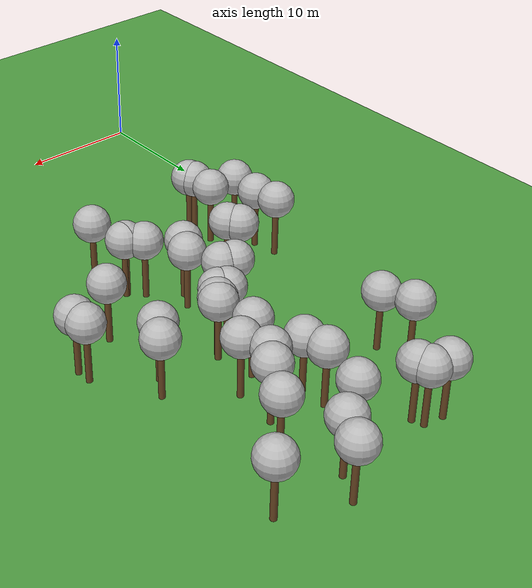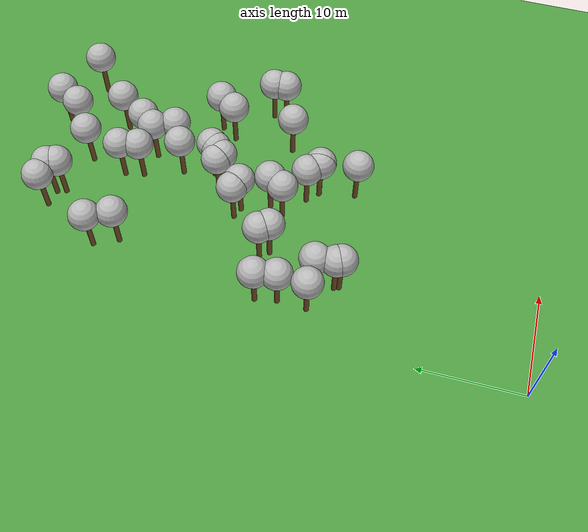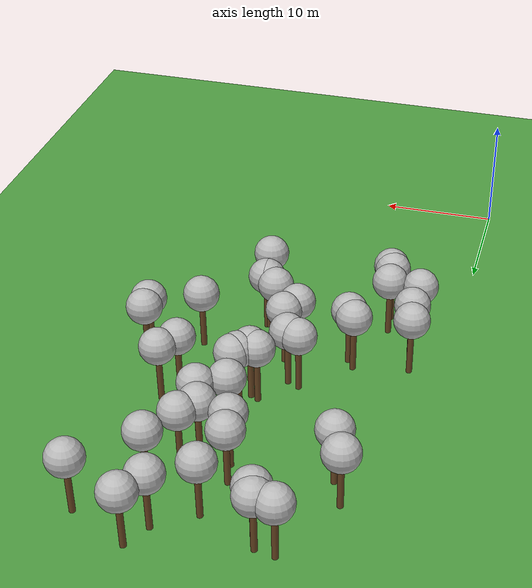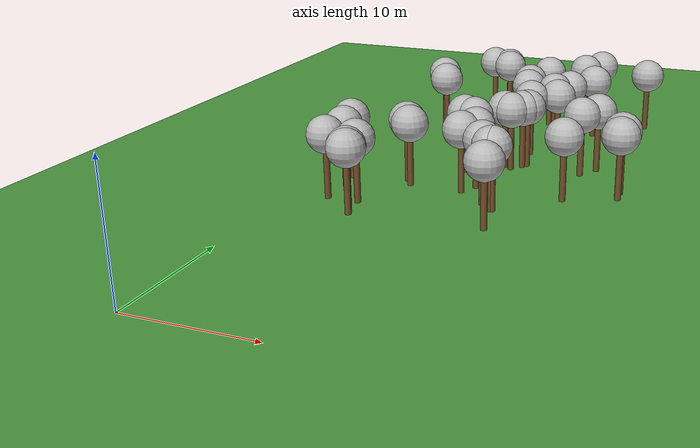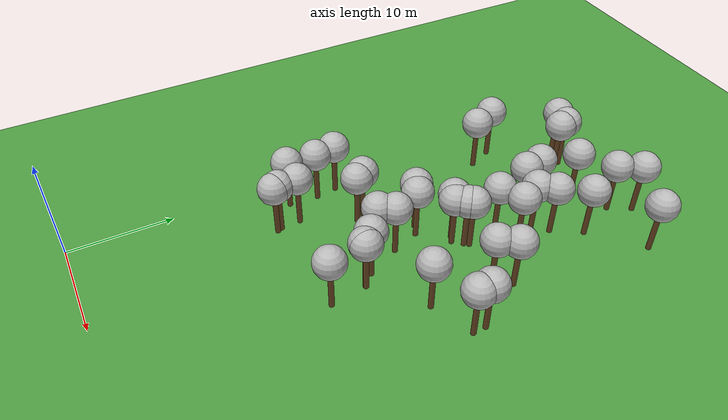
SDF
<sdf version="1.5">
 <world name="default">
  <model name="tree_simple497">
   <static>1</static>
   <link name="link">
    <pose>0 0 0.1 0 -0 0</pose>
    <collision name="collision_trunk">
     <pose>0 0 2 0 -0 0</pose>
     <geometry><cylinder><radius>0.25</radius><length>4</length></cylinder></geometry>
    </collision>
    <collision name="collision_treetop">
     <pose>0 0 5.2 0 -0 0</pose>
     <geometry><sphere><radius>1.5</radius></sphere></geometry>
    </collision>
    <visual name="trunk">
     <pose>0 0 2 0 -0 0</pose>
     <geometry><cylinder><radius>0.25</radius><length>4</length></cylinder></geometry>
     <material>
      <script>
       <uri>model://tree_simple/scripts</uri>
       <uri>model://tree_simple/materials/textures</uri>
       <name>TreeSimple/Trunk</name>
      </script>
     </material>
    </visual>
    <visual name="treetop">
     <pose>0 0 5.2 0 -0 0</pose>
     <geometry><sphere><radius>1.5</radius></sphere></geometry>
     <material>
      <script>
       <uri>model://tree_simple/scripts</uri>
       <uri>model://tree_simple/materials/textures</uri>
       <name>TreeSimple/Treetop</name>
      </script>
     </material>
    </visual>
   </link>
   <pose>16.5730666381 19.0016793819 0 0 -0 0</pose>
  </model>
  <model name="tree_simple465">
   <static>1</static>
   <link name="link">
    <pose>0 0 0.1 0 -0 0</pose>
    <collision name="collision_trunk">
     <pose>0 0 2 0 -0 0</pose>
     <geometry><cylinder><radius>0.25</radius><length>4</length></cylinder></geometry>
    </collision>
    <collision name="collision_treetop">
     <pose>0 0 5.2 0 -0 0</pose>
     <geometry><sphere><radius>1.5</radius></sphere></geometry>
    </collision>
    <visual name="trunk">
     <pose>0 0 2 0 -0 0</pose>
     <geometry><cylinder><radius>0.25</radius><length>4</length></cylinder></geometry>
     <material>
      <script>
       <uri>model://tree_simple/scripts</uri>
       <uri>model://tree_simple/materials/textures</uri>
       <name>TreeSimple/Trunk</name>
      </script>
     </material>
    </visual>
    <visual name="treetop">
     <pose>0 0 5.2 0 -0 0</pose>
     <geometry><sphere><radius>1.5</radius></sphere></geometry>
     <material>
      <script>
       <uri>model://tree_simple/scripts</uri>
       <uri>model://tree_simple/materials/textures</uri>
       <name>TreeSimple/Treetop</name>
      </script>
     </material>
    </visual>
   </link>
   <pose>5.78708546562 20.6382949275 0 0 -0 0</pose>
  </model>
  <model name="tree_simple459">
   <static>1</static>
   <link name="link">
    <pose>0 0 0.1 0 -0 0</pose>
    <collision name="collision_trunk">
     <pose>0 0 2 0 -0 0</pose>
     <geometry><cylinder><radius>0.25</radius><length>4</length></cylinder></geometry>
    </collision>
    <collision name="collision_treetop">
     <pose>0 0 5.2 0 -0 0</pose>
     <geometry><sphere><radius>1.5</radius></sphere></geometry>
    </collision>
    <visual name="trunk">
     <pose>0 0 2 0 -0 0</pose>
     <geometry><cylinder><radius>0.25</radius><length>4</length></cylinder></geometry>
     <material>
      <script>
       <uri>model://tree_simple/scripts</uri>
       <uri>model://tree_simple/materials/textures</uri>
       <name>TreeSimple/Trunk</name>
      </script>
     </material>
    </visual>
    <visual name="treetop">
     <pose>0 0 5.2 0 -0 0</pose>
     <geometry><sphere><radius>1.5</radius></sphere></geometry>
     <material>
      <script>
       <uri>model://tree_simple/scripts</uri>
       <uri>model://tree_simple/materials/textures</uri>
       <name>TreeSimple/Treetop</name>
      </script>
     </material>
    </visual>
   </link>
   <pose>23.3051385383 47.6025012909 0 0 -0 0</pose>
  </model>
  <model name="tree_simple457">
   <static>1</static>
   <link name="link">
    <pose>0 0 0.1 0 -0 0</pose>
    <collision name="collision_trunk">
     <pose>0 0 2 0 -0 0</pose>
     <geometry><cylinder><radius>0.25</radius><length>4</length></cylinder></geometry>
    </collision>
    <collision name="collision_treetop">
     <pose>0 0 5.2 0 -0 0</pose>
     <geometry><sphere><radius>1.5</radius></sphere></geometry>
    </collision>
    <visual name="trunk">
     <pose>0 0 2 0 -0 0</pose>
     <geometry><cylinder><radius>0.25</radius><length>4</length></cylinder></geometry>
     <material>
      <script>
       <uri>model://tree_simple/scripts</uri>
       <uri>model://tree_simple/materials/textures</uri>
       <name>TreeSimple/Trunk</name>
      </script>
     </material>
    </visual>
    <visual name="treetop">
     <pose>0 0 5.2 0 -0 0</pose>
     <geometry><sphere><radius>1.5</radius></sphere></geometry>
     <material>
      <script>
       <uri>model://tree_simple/scripts</uri>
       <uri>model://tree_simple/materials/textures</uri>
       <name>TreeSimple/Treetop</name>
      </script>
     </material>
    </visual>
   </link>
   <pose>13.2865883098 26.7984826025 0 0 -0 0</pose>
  </model>
  <model name="tree_simple452">
   <static>1</static>
   <link name="link">
    <pose>0 0 0.1 0 -0 0</pose>
    <collision name="collision_trunk">
     <pose>0 0 2 0 -0 0</pose>
     <geometry><cylinder><radius>0.25</radius><length>4</length></cylinder></geometry>
    </collision>
    <collision name="collision_treetop">
     <pose>0 0 5.2 0 -0 0</pose>
     <geometry><sphere><radius>1.5</radius></sphere></geometry>
    </collision>
    <visual name="trunk">
     <pose>0 0 2 0 -0 0</pose>
     <geometry><cylinder><radius>0.25</radius><length>4</length></cylinder></geometry>
     <material>
      <script>
       <uri>model://tree_simple/scripts</uri>
       <uri>model://tree_simple/materials/textures</uri>
       <name>TreeSimple/Trunk</name>
      </script>
     </material>
    </visual>
    <visual name="treetop">
     <pose>0 0 5.2 0 -0 0</pose>
     <geometry><sphere><radius>1.5</radius></sphere></geometry>
     <material>
      <script>
       <uri>model://tree_simple/scripts</uri>
       <uri>model://tree_simple/materials/textures</uri>
       <name>TreeSimple/Treetop</name>
      </script>
     </material>
    </visual>
   </link>
   <pose>21.4881506157 34.0286005496 0 0 -0 0</pose>
  </model>
  <model name="tree_simple450">
   <static>1</static>
   <link name="link">
    <pose>0 0 0.1 0 -0 0</pose>
    <collision name="collision_trunk">
     <pose>0 0 2 0 -0 0</pose>
     <geometry><cylinder><radius>0.25</radius><length>4</length></cylinder></geometry>
    </collision>
    <collision name="collision_treetop">
     <pose>0 0 5.2 0 -0 0</pose>
     <geometry><sphere><radius>1.5</radius></sphere></geometry>
    </collision>
    <visual name="trunk">
     <pose>0 0 2 0 -0 0</pose>
     <geometry><cylinder><radius>0.25</radius><length>4</length></cylinder></geometry>
     <material>
      <script>
       <uri>model://tree_simple/scripts</uri>
       <uri>model://tree_simple/materials/textures</uri>
       <name>TreeSimple/Trunk</name>
      </script>
     </material>
    </visual>
    <visual name="treetop">
     <pose>0 0 5.2 0 -0 0</pose>
     <geometry><sphere><radius>1.5</radius></sphere></geometry>
     <material>
      <script>
       <uri>model://tree_simple/scripts</uri>
       <uri>model://tree_simple/materials/textures</uri>
       <name>TreeSimple/Treetop</name>
      </script>
     </material>
    </visual>
   </link>
   <pose>16.0273432372 22.5148519884 0 0 -0 0</pose>
  </model>
  <model name="tree_simple445">
   <static>1</static>
   <link name="link">
    <pose>0 0 0.1 0 -0 0</pose>
    <collision name="collision_trunk">
     <pose>0 0 2 0 -0 0</pose>
     <geometry><cylinder><radius>0.25</radius><length>4</length></cylinder></geometry>
    </collision>
    <collision name="collision_treetop">
     <pose>0 0 5.2 0 -0 0</pose>
     <geometry><sphere><radius>1.5</radius></sphere></geometry>
    </collision>
    <visual name="trunk">
     <pose>0 0 2 0 -0 0</pose>
     <geometry><cylinder><radius>0.25</radius><length>4</length></cylinder></geometry>
     <material>
      <script>
       <uri>model://tree_simple/scripts</uri>
       <uri>model://tree_simple/materials/textures</uri>
       <name>TreeSimple/Trunk</name>
      </script>
     </material>
    </visual>
    <visual name="treetop">
     <pose>0 0 5.2 0 -0 0</pose>
     <geometry><sphere><radius>1.5</radius></sphere></geometry>
     <material>
      <script>
       <uri>model://tree_simple/scripts</uri>
       <uri>model://tree_simple/materials/textures</uri>
       <name>TreeSimple/Treetop</name>
      </script>
     </material>
    </visual>
   </link>
   <pose>17.3330924595 47.7477611906 0 0 -0 0</pose>
  </model>
  <model name="tree_simple443">
   <static>1</static>
   <link name="link">
    <pose>0 0 0.1 0 -0 0</pose>
    <collision name="collision_trunk">
     <pose>0 0 2 0 -0 0</pose>
     <geometry><cylinder><radius>0.25</radius><length>4</length></cylinder></geometry>
    </collision>
    <collision name="collision_treetop">
     <pose>0 0 5.2 0 -0 0</pose>
     <geometry><sphere><radius>1.5</radius></sphere></geometry>
    </collision>
    <visual name="trunk">
     <pose>0 0 2 0 -0 0</pose>
     <geometry><cylinder><radius>0.25</radius><length>4</length></cylinder></geometry>
     <material>
      <script>
       <uri>model://tree_simple/scripts</uri>
       <uri>model://tree_simple/materials/textures</uri>
       <name>TreeSimple/Trunk</name>
      </script>
     </material>
    </visual>
    <visual name="treetop">
     <pose>0 0 5.2 0 -0 0</pose>
     <geometry><sphere><radius>1.5</radius></sphere></geometry>
     <material>
      <script>
       <uri>model://tree_simple/scripts</uri>
       <uri>model://tree_simple/materials/textures</uri>
       <name>TreeSimple/Treetop</name>
      </script>
     </material>
    </visual>
   </link>
   <pose>20.4518447393 32.4372971603 0 0 -0 0</pose>
  </model>
  <model name="tree_simple419">
   <static>1</static>
   <link name="link">
    <pose>0 0 0.1 0 -0 0</pose>
    <collision name="collision_trunk">
     <pose>0 0 2 0 -0 0</pose>
     <geometry><cylinder><radius>0.25</radius><length>4</length></cylinder></geometry>
    </collision>
    <collision name="collision_treetop">
     <pose>0 0 5.2 0 -0 0</pose>
     <geometry><sphere><radius>1.5</radius></sphere></geometry>
    </collision>
    <visual name="trunk">
     <pose>0 0 2 0 -0 0</pose>
     <geometry><cylinder><radius>0.25</radius><length>4</length></cylinder></geometry>
     <material>
      <script>
       <uri>model://tree_simple/scripts</uri>
       <uri>model://tree_simple/materials/textures</uri>
       <name>TreeSimple/Trunk</name>
      </script>
     </material>
    </visual>
    <visual name="treetop">
     <pose>0 0 5.2 0 -0 0</pose>
     <geometry><sphere><radius>1.5</radius></sphere></geometry>
     <material>
      <script>
       <uri>model://tree_simple/scripts</uri>
       <uri>model://tree_simple/materials/textures</uri>
       <name>TreeSimple/Treetop</name>
      </script>
     </material>
    </visual>
   </link>
   <pose>15.0608261067 36.3391301174 0 0 -0 0</pose>
  </model>
  <model name="tree_simple413">
   <static>1</static>
   <link name="link">
    <pose>0 0 0.1 0 -0 0</pose>
    <collision name="collision_trunk">
     <pose>0 0 2 0 -0 0</pose>
     <geometry><cylinder><radius>0.25</radius><length>4</length></cylinder></geometry>
    </collision>
    <collision name="collision_treetop">
     <pose>0 0 5.2 0 -0 0</pose>
     <geometry><sphere><radius>1.5</radius></sphere></geometry>
    </collision>
    <visual name="trunk">
     <pose>0 0 2 0 -0 0</pose>
     <geometry><cylinder><radius>0.25</radius><length>4</length></cylinder></geometry>
     <material>
      <script>
       <uri>model://tree_simple/scripts</uri>
       <uri>model://tree_simple/materials/textures</uri>
       <name>TreeSimple/Trunk</name>
      </script>
     </material>
    </visual>
    <visual name="treetop">
     <pose>0 0 5.2 0 -0 0</pose>
     <geometry><sphere><radius>1.5</radius></sphere></geometry>
     <material>
      <script>
       <uri>model://tree_simple/scripts</uri>
       <uri>model://tree_simple/materials/textures</uri>
       <name>TreeSimple/Treetop</name>
      </script>
     </material>
    </visual>
   </link>
   <pose>4.79772995732 42.1907919742 0 0 -0 0</pose>
  </model>
  <model name="tree_simple405">
   <static>1</static>
   <link name="link">
    <pose>0 0 0.1 0 -0 0</pose>
    <collision name="collision_trunk">
     <pose>0 0 2 0 -0 0</pose>
     <geometry><cylinder><radius>0.25</radius><length>4</length></cylinder></geometry>
    </collision>
    <collision name="collision_treetop">
     <pose>0 0 5.2 0 -0 0</pose>
     <geometry><sphere><radius>1.5</radius></sphere></geometry>
    </collision>
    <visual name="trunk">
     <pose>0 0 2 0 -0 0</pose>
     <geometry><cylinder><radius>0.25</radius><length>4</length></cylinder></geometry>
     <material>
      <script>
       <uri>model://tree_simple/scripts</uri>
       <uri>model://tree_simple/materials/textures</uri>
       <name>TreeSimple/Trunk</name>
      </script>
     </material>
    </visual>
    <visual name="treetop">
     <pose>0 0 5.2 0 -0 0</pose>
     <geometry><sphere><radius>1.5</radius></sphere></geometry>
     <material>
      <script>
       <uri>model://tree_simple/scripts</uri>
       <uri>model://tree_simple/materials/textures</uri>
       <name>TreeSimple/Treetop</name>
      </script>
     </material>
    </visual>
   </link>
   <pose>13.9640568795 32.2793272532 0 0 -0 0</pose>
  </model>
  <model name="tree_simple401">
   <static>1</static>
   <link name="link">
    <pose>0 0 0.1 0 -0 0</pose>
    <collision name="collision_trunk">
     <pose>0 0 2 0 -0 0</pose>
     <geometry><cylinder><radius>0.25</radius><length>4</length></cylinder></geometry>
    </collision>
    <collision name="collision_treetop">
     <pose>0 0 5.2 0 -0 0</pose>
     <geometry><sphere><radius>1.5</radius></sphere></geometry>
    </collision>
    <visual name="trunk">
     <pose>0 0 2 0 -0 0</pose>
     <geometry><cylinder><radius>0.25</radius><length>4</length></cylinder></geometry>
     <material>
      <script>
       <uri>model://tree_simple/scripts</uri>
       <uri>model://tree_simple/materials/textures</uri>
       <name>TreeSimple/Trunk</name>
      </script>
     </material>
    </visual>
    <visual name="treetop">
     <pose>0 0 5.2 0 -0 0</pose>
     <geometry><sphere><radius>1.5</radius></sphere></geometry>
     <material>
      <script>
       <uri>model://tree_simple/scripts</uri>
       <uri>model://tree_simple/materials/textures</uri>
       <name>TreeSimple/Treetop</name>
      </script>
     </material>
    </visual>
   </link>
   <pose>18.5119614972 49.8300347258 0 0 -0 0</pose>
  </model>
  <model name="tree_simple381">
   <static>1</static>
   <link name="link">
    <pose>0 0 0.1 0 -0 0</pose>
    <collision name="collision_trunk">
     <pose>0 0 2 0 -0 0</pose>
     <geometry><cylinder><radius>0.25</radius><length>4</length></cylinder></geometry>
    </collision>
    <collision name="collision_treetop">
     <pose>0 0 5.2 0 -0 0</pose>
     <geometry><sphere><radius>1.5</radius></sphere></geometry>
    </collision>
    <visual name="trunk">
     <pose>0 0 2 0 -0 0</pose>
     <geometry><cylinder><radius>0.25</radius><length>4</length></cylinder></geometry>
     <material>
      <script>
       <uri>model://tree_simple/scripts</uri>
       <uri>model://tree_simple/materials/textures</uri>
       <name>TreeSimple/Trunk</name>
      </script>
     </material>
    </visual>
    <visual name="treetop">
     <pose>0 0 5.2 0 -0 0</pose>
     <geometry><sphere><radius>1.5</radius></sphere></geometry>
     <material>
      <script>
       <uri>model://tree_simple/scripts</uri>
       <uri>model://tree_simple/materials/textures</uri>
       <name>TreeSimple/Treetop</name>
      </script>
     </material>
    </visual>
   </link>
   <pose>14.598493672 31.9609585056 0 0 -0 0</pose>
  </model>
  <model name="tree_simple372">
   <static>1</static>
   <link name="link">
    <pose>0 0 0.1 0 -0 0</pose>
    <collision name="collision_trunk">
     <pose>0 0 2 0 -0 0</pose>
     <geometry><cylinder><radius>0.25</radius><length>4</length></cylinder></geometry>
    </collision>
    <collision name="collision_treetop">
     <pose>0 0 5.2 0 -0 0</pose>
     <geometry><sphere><radius>1.5</radius></sphere></geometry>
    </collision>
    <visual name="trunk">
     <pose>0 0 2 0 -0 0</pose>
     <geometry><cylinder><radius>0.25</radius><length>4</length></cylinder></geometry>
     <material>
      <script>
       <uri>model://tree_simple/scripts</uri>
       <uri>model://tree_simple/materials/textures</uri>
       <name>TreeSimple/Trunk</name>
      </script>
     </material>
    </visual>
    <visual name="treetop">
     <pose>0 0 5.2 0 -0 0</pose>
     <geometry><sphere><radius>1.5</radius></sphere></geometry>
     <material>
      <script>
       <uri>model://tree_simple/scripts</uri>
       <uri>model://tree_simple/materials/textures</uri>
       <name>TreeSimple/Treetop</name>
      </script>
     </material>
    </visual>
   </link>
   <pose>19.0807104519 43.6051965294 0 0 -0 0</pose>
  </model>
  <model name="tree_simple367">
   <static>1</static>
   <link name="link">
    <pose>0 0 0.1 0 -0 0</pose>
    <collision name="collision_trunk">
     <pose>0 0 2 0 -0 0</pose>
     <geometry><cylinder><radius>0.25</radius><length>4</length></cylinder></geometry>
    </collision>
    <collision name="collision_treetop">
     <pose>0 0 5.2 0 -0 0</pose>
     <geometry><sphere><radius>1.5</radius></sphere></geometry>
    </collision>
    <visual name="trunk">
     <pose>0 0 2 0 -0 0</pose>
     <geometry><cylinder><radius>0.25</radius><length>4</length></cylinder></geometry>
     <material>
      <script>
       <uri>model://tree_simple/scripts</uri>
       <uri>model://tree_simple/materials/textures</uri>
       <name>TreeSimple/Trunk</name>
      </script>
     </material>
    </visual>
    <visual name="treetop">
     <pose>0 0 5.2 0 -0 0</pose>
     <geometry><sphere><radius>1.5</radius></sphere></geometry>
     <material>
      <script>
       <uri>model://tree_simple/scripts</uri>
       <uri>model://tree_simple/materials/textures</uri>
       <name>TreeSimple/Treetop</name>
      </script>
     </material>
    </visual>
   </link>
   <pose>14.2659299001 45.7179827091 0 0 -0 0</pose>
  </model>
  <model name="tree_simple365">
   <static>1</static>
   <link name="link">
    <pose>0 0 0.1 0 -0 0</pose>
    <collision name="collision_trunk">
     <pose>0 0 2 0 -0 0</pose>
     <geometry><cylinder><radius>0.25</radius><length>4</length></cylinder></geometry>
    </collision>
    <collision name="collision_treetop">
     <pose>0 0 5.2 0 -0 0</pose>
     <geometry><sphere><radius>1.5</radius></sphere></geometry>
    </collision>
    <visual name="trunk">
     <pose>0 0 2 0 -0 0</pose>
     <geometry><cylinder><radius>0.25</radius><length>4</length></cylinder></geometry>
     <material>
      <script>
       <uri>model://tree_simple/scripts</uri>
       <uri>model://tree_simple/materials/textures</uri>
       <name>TreeSimple/Trunk</name>
      </script>
     </material>
    </visual>
    <visual name="treetop">
     <pose>0 0 5.2 0 -0 0</pose>
     <geometry><sphere><radius>1.5</radius></sphere></geometry>
     <material>
      <script>
       <uri>model://tree_simple/scripts</uri>
       <uri>model://tree_simple/materials/textures</uri>
       <name>TreeSimple/Treetop</name>
      </script>
     </material>
    </visual>
   </link>
   <pose>7.96669325113 48.1339153876 0 0 -0 0</pose>
  </model>
  <model name="tree_simple340">
   <static>1</static>
   <link name="link">
    <pose>0 0 0.1 0 -0 0</pose>
    <collision name="collision_trunk">
     <pose>0 0 2 0 -0 0</pose>
     <geometry><cylinder><radius>0.25</radius><length>4</length></cylinder></geometry>
    </collision>
    <collision name="collision_treetop">
     <pose>0 0 5.2 0 -0 0</pose>
     <geometry><sphere><radius>1.5</radius></sphere></geometry>
    </collision>
    <visual name="trunk">
     <pose>0 0 2 0 -0 0</pose>
     <geometry><cylinder><radius>0.25</radius><length>4</length></cylinder></geometry>
     <material>
      <script>
       <uri>model://tree_simple/scripts</uri>
       <uri>model://tree_simple/materials/textures</uri>
       <name>TreeSimple/Trunk</name>
      </script>
     </material>
    </visual>
    <visual name="treetop">
     <pose>0 0 5.2 0 -0 0</pose>
     <geometry><sphere><radius>1.5</radius></sphere></geometry>
     <material>
      <script>
       <uri>model://tree_simple/scripts</uri>
       <uri>model://tree_simple/materials/textures</uri>
       <name>TreeSimple/Treetop</name>
      </script>
     </material>
    </visual>
   </link>
   <pose>15.6359324045 33.2415832038 0 0 -0 0</pose>
  </model>
  <model name="tree_simple339">
   <static>1</static>
   <link name="link">
    <pose>0 0 0.1 0 -0 0</pose>
    <collision name="collision_trunk">
     <pose>0 0 2 0 -0 0</pose>
     <geometry><cylinder><radius>0.25</radius><length>4</length></cylinder></geometry>
    </collision>
    <collision name="collision_treetop">
     <pose>0 0 5.2 0 -0 0</pose>
     <geometry><sphere><radius>1.5</radius></sphere></geometry>
    </collision>
    <visual name="trunk">
     <pose>0 0 2 0 -0 0</pose>
     <geometry><cylinder><radius>0.25</radius><length>4</length></cylinder></geometry>
     <material>
      <script>
       <uri>model://tree_simple/scripts</uri>
       <uri>model://tree_simple/materials/textures</uri>
       <name>TreeSimple/Trunk</name>
      </script>
     </material>
    </visual>
    <visual name="treetop">
     <pose>0 0 5.2 0 -0 0</pose>
     <geometry><sphere><radius>1.5</radius></sphere></geometry>
     <material>
      <script>
       <uri>model://tree_simple/scripts</uri>
       <uri>model://tree_simple/materials/textures</uri>
       <name>TreeSimple/Treetop</name>
      </script>
     </material>
    </visual>
   </link>
   <pose>8.14193712957 25.5166560065 0 0 -0 0</pose>
  </model>
  <model name="tree_simple328">
   <static>1</static>
   <link name="link">
    <pose>0 0 0.1 0 -0 0</pose>
    <collision name="collision_trunk">
     <pose>0 0 2 0 -0 0</pose>
     <geometry><cylinder><radius>0.25</radius><length>4</length></cylinder></geometry>
    </collision>
    <collision name="collision_treetop">
     <pose>0 0 5.2 0 -0 0</pose>
     <geometry><sphere><radius>1.5</radius></sphere></geometry>
    </collision>
    <visual name="trunk">
     <pose>0 0 2 0 -0 0</pose>
     <geometry><cylinder><radius>0.25</radius><length>4</length></cylinder></geometry>
     <material>
      <script>
       <uri>model://tree_simple/scripts</uri>
       <uri>model://tree_simple/materials/textures</uri>
       <name>TreeSimple/Trunk</name>
      </script>
     </material>
    </visual>
    <visual name="treetop">
     <pose>0 0 5.2 0 -0 0</pose>
     <geometry><sphere><radius>1.5</radius></sphere></geometry>
     <material>
      <script>
       <uri>model://tree_simple/scripts</uri>
       <uri>model://tree_simple/materials/textures</uri>
       <name>TreeSimple/Treetop</name>
      </script>
     </material>
    </visual>
   </link>
   <pose>3.34573808519 23.5188113382 0 0 -0 0</pose>
  </model>
  <model name="tree_simple325">
   <static>1</static>
   <link name="link">
    <pose>0 0 0.1 0 -0 0</pose>
    <collision name="collision_trunk">
     <pose>0 0 2 0 -0 0</pose>
     <geometry><cylinder><radius>0.25</radius><length>4</length></cylinder></geometry>
    </collision>
    <collision name="collision_treetop">
     <pose>0 0 5.2 0 -0 0</pose>
     <geometry><sphere><radius>1.5</radius></sphere></geometry>
    </collision>
    <visual name="trunk">
     <pose>0 0 2 0 -0 0</pose>
     <geometry><cylinder><radius>0.25</radius><length>4</length></cylinder></geometry>
     <material>
      <script>
       <uri>model://tree_simple/scripts</uri>
       <uri>model://tree_simple/materials/textures</uri>
       <name>TreeSimple/Trunk</name>
      </script>
     </material>
    </visual>
    <visual name="treetop">
     <pose>0 0 5.2 0 -0 0</pose>
     <geometry><sphere><radius>1.5</radius></sphere></geometry>
     <material>
      <script>
       <uri>model://tree_simple/scripts</uri>
       <uri>model://tree_simple/materials/textures</uri>
       <name>TreeSimple/Treetop</name>
      </script>
     </material>
    </visual>
   </link>
   <pose>16.3512762839 39.5353955834 0 0 -0 0</pose>
  </model>
  <model name="tree_simple320">
   <static>1</static>
   <link name="link">
    <pose>0 0 0.1 0 -0 0</pose>
    <collision name="collision_trunk">
     <pose>0 0 2 0 -0 0</pose>
     <geometry><cylinder><radius>0.25</radius><length>4</length></cylinder></geometry>
    </collision>
    <collision name="collision_treetop">
     <pose>0 0 5.2 0 -0 0</pose>
     <geometry><sphere><radius>1.5</radius></sphere></geometry>
    </collision>
    <visual name="trunk">
     <pose>0 0 2 0 -0 0</pose>
     <geometry><cylinder><radius>0.25</radius><length>4</length></cylinder></geometry>
     <material>
      <script>
       <uri>model://tree_simple/scripts</uri>
       <uri>model://tree_simple/materials/textures</uri>
       <name>TreeSimple/Trunk</name>
      </script>
     </material>
    </visual>
    <visual name="treetop">
     <pose>0 0 5.2 0 -0 0</pose>
     <geometry><sphere><radius>1.5</radius></sphere></geometry>
     <material>
      <script>
       <uri>model://tree_simple/scripts</uri>
       <uri>model://tree_simple/materials/textures</uri>
       <name>TreeSimple/Treetop</name>
      </script>
     </material>
    </visual>
   </link>
   <pose>17.4267796311 40.9028236297 0 0 -0 0</pose>
  </model>
  <model name="tree_simple295">
   <static>1</static>
   <link name="link">
    <pose>0 0 0.1 0 -0 0</pose>
    <collision name="collision_trunk">
     <pose>0 0 2 0 -0 0</pose>
     <geometry><cylinder><radius>0.25</radius><length>4</length></cylinder></geometry>
    </collision>
    <collision name="collision_treetop">
     <pose>0 0 5.2 0 -0 0</pose>
     <geometry><sphere><radius>1.5</radius></sphere></geometry>
    </collision>
    <visual name="trunk">
     <pose>0 0 2 0 -0 0</pose>
     <geometry><cylinder><radius>0.25</radius><length>4</length></cylinder></geometry>
     <material>
      <script>
       <uri>model://tree_simple/scripts</uri>
       <uri>model://tree_simple/materials/textures</uri>
       <name>TreeSimple/Trunk</name>
      </script>
     </material>
    </visual>
    <visual name="treetop">
     <pose>0 0 5.2 0 -0 0</pose>
     <geometry><sphere><radius>1.5</radius></sphere></geometry>
     <material>
      <script>
       <uri>model://tree_simple/scripts</uri>
       <uri>model://tree_simple/materials/textures</uri>
       <name>TreeSimple/Treetop</name>
      </script>
     </material>
    </visual>
   </link>
   <pose>24.4545500201 28.0657933919 0 0 -0 0</pose>
  </model>
  <model name="tree_simple287">
   <static>1</static>
   <link name="link">
    <pose>0 0 0.1 0 -0 0</pose>
    <collision name="collision_trunk">
     <pose>0 0 2 0 -0 0</pose>
     <geometry><cylinder><radius>0.25</radius><length>4</length></cylinder></geometry>
    </collision>
    <collision name="collision_treetop">
     <pose>0 0 5.2 0 -0 0</pose>
     <geometry><sphere><radius>1.5</radius></sphere></geometry>
    </collision>
    <visual name="trunk">
     <pose>0 0 2 0 -0 0</pose>
     <geometry><cylinder><radius>0.25</radius><length>4</length></cylinder></geometry>
     <material>
      <script>
       <uri>model://tree_simple/scripts</uri>
       <uri>model://tree_simple/materials/textures</uri>
       <name>TreeSimple/Trunk</name>
      </script>
     </material>
    </visual>
    <visual name="treetop">
     <pose>0 0 5.2 0 -0 0</pose>
     <geometry><sphere><radius>1.5</radius></sphere></geometry>
     <material>
      <script>
       <uri>model://tree_simple/scripts</uri>
       <uri>model://tree_simple/materials/textures</uri>
       <name>TreeSimple/Treetop</name>
      </script>
     </material>
    </visual>
   </link>
   <pose>5.81960290033 39.8953620518 0 0 -0 0</pose>
  </model>
  <model name="tree_simple275">
   <static>1</static>
   <link name="link">
    <pose>0 0 0.1 0 -0 0</pose>
    <collision name="collision_trunk">
     <pose>0 0 2 0 -0 0</pose>
     <geometry><cylinder><radius>0.25</radius><length>4</length></cylinder></geometry>
    </collision>
    <collision name="collision_treetop">
     <pose>0 0 5.2 0 -0 0</pose>
     <geometry><sphere><radius>1.5</radius></sphere></geometry>
    </collision>
    <visual name="trunk">
     <pose>0 0 2 0 -0 0</pose>
     <geometry><cylinder><radius>0.25</radius><length>4</length></cylinder></geometry>
     <material>
      <script>
       <uri>model://tree_simple/scripts</uri>
       <uri>model://tree_simple/materials/textures</uri>
       <name>TreeSimple/Trunk</name>
      </script>
     </material>
    </visual>
    <visual name="treetop">
     <pose>0 0 5.2 0 -0 0</pose>
     <geometry><sphere><radius>1.5</radius></sphere></geometry>
     <material>
      <script>
       <uri>model://tree_simple/scripts</uri>
       <uri>model://tree_simple/materials/textures</uri>
       <name>TreeSimple/Treetop</name>
      </script>
     </material>
    </visual>
   </link>
   <pose>11.2194181464 29.9629539421 0 0 -0 0</pose>
  </model>
  <model name="tree_simple260">
   <static>1</static>
   <link name="link">
    <pose>0 0 0.1 0 -0 0</pose>
    <collision name="collision_trunk">
     <pose>0 0 2 0 -0 0</pose>
     <geometry><cylinder><radius>0.25</radius><length>4</length></cylinder></geometry>
    </collision>
    <collision name="collision_treetop">
     <pose>0 0 5.2 0 -0 0</pose>
     <geometry><sphere><radius>1.5</radius></sphere></geometry>
    </collision>
    <visual name="trunk">
     <pose>0 0 2 0 -0 0</pose>
     <geometry><cylinder><radius>0.25</radius><length>4</length></cylinder></geometry>
     <material>
      <script>
       <uri>model://tree_simple/scripts</uri>
       <uri>model://tree_simple/materials/textures</uri>
       <name>TreeSimple/Trunk</name>
      </script>
     </material>
    </visual>
    <visual name="treetop">
     <pose>0 0 5.2 0 -0 0</pose>
     <geometry><sphere><radius>1.5</radius></sphere></geometry>
     <material>
      <script>
       <uri>model://tree_simple/scripts</uri>
       <uri>model://tree_simple/materials/textures</uri>
       <name>TreeSimple/Treetop</name>
      </script>
     </material>
    </visual>
   </link>
   <pose>20.4747246255 26.3739745209 0 0 -0 0</pose>
  </model>
  <model name="tree_simple258">
   <static>1</static>
   <link name="link">
    <pose>0 0 0.1 0 -0 0</pose>
    <collision name="collision_trunk">
     <pose>0 0 2 0 -0 0</pose>
     <geometry><cylinder><radius>0.25</radius><length>4</length></cylinder></geometry>
    </collision>
    <collision name="collision_treetop">
     <pose>0 0 5.2 0 -0 0</pose>
     <geometry><sphere><radius>1.5</radius></sphere></geometry>
    </collision>
    <visual name="trunk">
     <pose>0 0 2 0 -0 0</pose>
     <geometry><cylinder><radius>0.25</radius><length>4</length></cylinder></geometry>
     <material>
      <script>
       <uri>model://tree_simple/scripts</uri>
       <uri>model://tree_simple/materials/textures</uri>
       <name>TreeSimple/Trunk</name>
      </script>
     </material>
    </visual>
    <visual name="treetop">
     <pose>0 0 5.2 0 -0 0</pose>
     <geometry><sphere><radius>1.5</radius></sphere></geometry>
     <material>
      <script>
       <uri>model://tree_simple/scripts</uri>
       <uri>model://tree_simple/materials/textures</uri>
       <name>TreeSimple/Treetop</name>
      </script>
     </material>
    </visual>
   </link>
   <pose>24.3825797899 29.2966391115 0 0 -0 0</pose>
  </model>
  <model name="tree_simple254">
   <static>1</static>
   <link name="link">
    <pose>0 0 0.1 0 -0 0</pose>
    <collision name="collision_trunk">
     <pose>0 0 2 0 -0 0</pose>
     <geometry><cylinder><radius>0.25</radius><length>4</length></cylinder></geometry>
    </collision>
    <collision name="collision_treetop">
     <pose>0 0 5.2 0 -0 0</pose>
     <geometry><sphere><radius>1.5</radius></sphere></geometry>
    </collision>
    <visual name="trunk">
     <pose>0 0 2 0 -0 0</pose>
     <geometry><cylinder><radius>0.25</radius><length>4</length></cylinder></geometry>
     <material>
      <script>
       <uri>model://tree_simple/scripts</uri>
       <uri>model://tree_simple/materials/textures</uri>
       <name>TreeSimple/Trunk</name>
      </script>
     </material>
    </visual>
    <visual name="treetop">
     <pose>0 0 5.2 0 -0 0</pose>
     <geometry><sphere><radius>1.5</radius></sphere></geometry>
     <material>
      <script>
       <uri>model://tree_simple/scripts</uri>
       <uri>model://tree_simple/materials/textures</uri>
       <name>TreeSimple/Treetop</name>
      </script>
     </material>
    </visual>
   </link>
   <pose>13.3684370787 41.9999258399 0 0 -0 0</pose>
  </model>
  <model name="tree_simple229">
   <static>1</static>
   <link name="link">
    <pose>0 0 0.1 0 -0 0</pose>
    <collision name="collision_trunk">
     <pose>0 0 2 0 -0 0</pose>
     <geometry><cylinder><radius>0.25</radius><length>4</length></cylinder></geometry>
    </collision>
    <collision name="collision_treetop">
     <pose>0 0 5.2 0 -0 0</pose>
     <geometry><sphere><radius>1.5</radius></sphere></geometry>
    </collision>
    <visual name="trunk">
     <pose>0 0 2 0 -0 0</pose>
     <geometry><cylinder><radius>0.25</radius><length>4</length></cylinder></geometry>
     <material>
      <script>
       <uri>model://tree_simple/scripts</uri>
       <uri>model://tree_simple/materials/textures</uri>
       <name>TreeSimple/Trunk</name>
      </script>
     </material>
    </visual>
    <visual name="treetop">
     <pose>0 0 5.2 0 -0 0</pose>
     <geometry><sphere><radius>1.5</radius></sphere></geometry>
     <material>
      <script>
       <uri>model://tree_simple/scripts</uri>
       <uri>model://tree_simple/materials/textures</uri>
       <name>TreeSimple/Treetop</name>
      </script>
     </material>
    </visual>
   </link>
   <pose>17.1703693381 37.4765229217 0 0 -0 0</pose>
  </model>
  <model name="tree_simple196">
   <static>1</static>
   <link name="link">
    <pose>0 0 0.1 0 -0 0</pose>
    <collision name="collision_trunk">
     <pose>0 0 2 0 -0 0</pose>
     <geometry><cylinder><radius>0.25</radius><length>4</length></cylinder></geometry>
    </collision>
    <collision name="collision_treetop">
     <pose>0 0 5.2 0 -0 0</pose>
     <geometry><sphere><radius>1.5</radius></sphere></geometry>
    </collision>
    <visual name="trunk">
     <pose>0 0 2 0 -0 0</pose>
     <geometry><cylinder><radius>0.25</radius><length>4</length></cylinder></geometry>
     <material>
      <script>
       <uri>model://tree_simple/scripts</uri>
       <uri>model://tree_simple/materials/textures</uri>
       <name>TreeSimple/Trunk</name>
      </script>
     </material>
    </visual>
    <visual name="treetop">
     <pose>0 0 5.2 0 -0 0</pose>
     <geometry><sphere><radius>1.5</radius></sphere></geometry>
     <material>
      <script>
       <uri>model://tree_simple/scripts</uri>
       <uri>model://tree_simple/materials/textures</uri>
       <name>TreeSimple/Treetop</name>
      </script>
     </material>
    </visual>
   </link>
   <pose>13.7422198568 40.1413468751 0 0 -0 0</pose>
  </model>
  <model name="tree_simple189">
   <static>1</static>
   <link name="link">
    <pose>0 0 0.1 0 -0 0</pose>
    <collision name="collision_trunk">
     <pose>0 0 2 0 -0 0</pose>
     <geometry><cylinder><radius>0.25</radius><length>4</length></cylinder></geometry>
    </collision>
    <collision name="collision_treetop">
     <pose>0 0 5.2 0 -0 0</pose>
     <geometry><sphere><radius>1.5</radius></sphere></geometry>
    </collision>
    <visual name="trunk">
     <pose>0 0 2 0 -0 0</pose>
     <geometry><cylinder><radius>0.25</radius><length>4</length></cylinder></geometry>
     <material>
      <script>
       <uri>model://tree_simple/scripts</uri>
       <uri>model://tree_simple/materials/textures</uri>
       <name>TreeSimple/Trunk</name>
      </script>
     </material>
    </visual>
    <visual name="treetop">
     <pose>0 0 5.2 0 -0 0</pose>
     <geometry><sphere><radius>1.5</radius></sphere></geometry>
     <material>
      <script>
       <uri>model://tree_simple/scripts</uri>
       <uri>model://tree_simple/materials/textures</uri>
       <name>TreeSimple/Treetop</name>
      </script>
     </material>
    </visual>
   </link>
   <pose>7.56705231804 26.3742867244 0 0 -0 0</pose>
  </model>
  <model name="tree_simple181">
   <static>1</static>
   <link name="link">
    <pose>0 0 0.1 0 -0 0</pose>
    <collision name="collision_trunk">
     <pose>0 0 2 0 -0 0</pose>
     <geometry><cylinder><radius>0.25</radius><length>4</length></cylinder></geometry>
    </collision>
    <collision name="collision_treetop">
     <pose>0 0 5.2 0 -0 0</pose>
     <geometry><sphere><radius>1.5</radius></sphere></geometry>
    </collision>
    <visual name="trunk">
     <pose>0 0 2 0 -0 0</pose>
     <geometry><cylinder><radius>0.25</radius><length>4</length></cylinder></geometry>
     <material>
      <script>
       <uri>model://tree_simple/scripts</uri>
       <uri>model://tree_simple/materials/textures</uri>
       <name>TreeSimple/Trunk</name>
      </script>
     </material>
    </visual>
    <visual name="treetop">
     <pose>0 0 5.2 0 -0 0</pose>
     <geometry><sphere><radius>1.5</radius></sphere></geometry>
     <material>
      <script>
       <uri>model://tree_simple/scripts</uri>
       <uri>model://tree_simple/materials/textures</uri>
       <name>TreeSimple/Treetop</name>
      </script>
     </material>
    </visual>
   </link>
   <pose>14.8848643659 23.5674852772 0 0 -0 0</pose>
  </model>
  <model name="tree_simple177">
   <static>1</static>
   <link name="link">
    <pose>0 0 0.1 0 -0 0</pose>
    <collision name="collision_trunk">
     <pose>0 0 2 0 -0 0</pose>
     <geometry><cylinder><radius>0.25</radius><length>4</length></cylinder></geometry>
    </collision>
    <collision name="collision_treetop">
     <pose>0 0 5.2 0 -0 0</pose>
     <geometry><sphere><radius>1.5</radius></sphere></geometry>
    </collision>
    <visual name="trunk">
     <pose>0 0 2 0 -0 0</pose>
     <geometry><cylinder><radius>0.25</radius><length>4</length></cylinder></geometry>
     <material>
      <script>
       <uri>model://tree_simple/scripts</uri>
       <uri>model://tree_simple/materials/textures</uri>
       <name>TreeSimple/Trunk</name>
      </script>
     </material>
    </visual>
    <visual name="treetop">
     <pose>0 0 5.2 0 -0 0</pose>
     <geometry><sphere><radius>1.5</radius></sphere></geometry>
     <material>
      <script>
       <uri>model://tree_simple/scripts</uri>
       <uri>model://tree_simple/materials/textures</uri>
       <name>TreeSimple/Treetop</name>
      </script>
     </material>
    </visual>
   </link>
   <pose>5.95472873547 18.7195439191 0 0 -0 0</pose>
  </model>
  <model name="tree_simple170">
   <static>1</static>
   <link name="link">
    <pose>0 0 0.1 0 -0 0</pose>
    <collision name="collision_trunk">
     <pose>0 0 2 0 -0 0</pose>
     <geometry><cylinder><radius>0.25</radius><length>4</length></cylinder></geometry>
    </collision>
    <collision name="collision_treetop">
     <pose>0 0 5.2 0 -0 0</pose>
     <geometry><sphere><radius>1.5</radius></sphere></geometry>
    </collision>
    <visual name="trunk">
     <pose>0 0 2 0 -0 0</pose>
     <geometry><cylinder><radius>0.25</radius><length>4</length></cylinder></geometry>
     <material>
      <script>
       <uri>model://tree_simple/scripts</uri>
       <uri>model://tree_simple/materials/textures</uri>
       <name>TreeSimple/Trunk</name>
      </script>
     </material>
    </visual>
    <visual name="treetop">
     <pose>0 0 5.2 0 -0 0</pose>
     <geometry><sphere><radius>1.5</radius></sphere></geometry>
     <material>
      <script>
       <uri>model://tree_simple/scripts</uri>
       <uri>model://tree_simple/materials/textures</uri>
       <name>TreeSimple/Treetop</name>
      </script>
     </material>
    </visual>
   </link>
   <pose>15.3427930971 32.8273761874 0 0 -0 0</pose>
  </model>
  <model name="tree_simple148">
   <static>1</static>
   <link name="link">
    <pose>0 0 0.1 0 -0 0</pose>
    <collision name="collision_trunk">
     <pose>0 0 2 0 -0 0</pose>
     <geometry><cylinder><radius>0.25</radius><length>4</length></cylinder></geometry>
    </collision>
    <collision name="collision_treetop">
     <pose>0 0 5.2 0 -0 0</pose>
     <geometry><sphere><radius>1.5</radius></sphere></geometry>
    </collision>
    <visual name="trunk">
     <pose>0 0 2 0 -0 0</pose>
     <geometry><cylinder><radius>0.25</radius><length>4</length></cylinder></geometry>
     <material>
      <script>
       <uri>model://tree_simple/scripts</uri>
       <uri>model://tree_simple/materials/textures</uri>
       <name>TreeSimple/Trunk</name>
      </script>
     </material>
    </visual>
    <visual name="treetop">
     <pose>0 0 5.2 0 -0 0</pose>
     <geometry><sphere><radius>1.5</radius></sphere></geometry>
     <material>
      <script>
       <uri>model://tree_simple/scripts</uri>
       <uri>model://tree_simple/materials/textures</uri>
       <name>TreeSimple/Treetop</name>
      </script>
     </material>
    </visual>
   </link>
   <pose>9.57342478742 47.8556833804 0 0 -0 0</pose>
  </model>
  <model name="tree_simple141">
   <static>1</static>
   <link name="link">
    <pose>0 0 0.1 0 -0 0</pose>
    <collision name="collision_trunk">
     <pose>0 0 2 0 -0 0</pose>
     <geometry><cylinder><radius>0.25</radius><length>4</length></cylinder></geometry>
    </collision>
    <collision name="collision_treetop">
     <pose>0 0 5.2 0 -0 0</pose>
     <geometry><sphere><radius>1.5</radius></sphere></geometry>
    </collision>
    <visual name="trunk">
     <pose>0 0 2 0 -0 0</pose>
     <geometry><cylinder><radius>0.25</radius><length>4</length></cylinder></geometry>
     <material>
      <script>
       <uri>model://tree_simple/scripts</uri>
       <uri>model://tree_simple/materials/textures</uri>
       <name>TreeSimple/Trunk</name>
      </script>
     </material>
    </visual>
    <visual name="treetop">
     <pose>0 0 5.2 0 -0 0</pose>
     <geometry><sphere><radius>1.5</radius></sphere></geometry>
     <material>
      <script>
       <uri>model://tree_simple/scripts</uri>
       <uri>model://tree_simple/materials/textures</uri>
       <name>TreeSimple/Treetop</name>
      </script>
     </material>
    </visual>
   </link>
   <pose>9.87468341031 46.9856847557 0 0 -0 0</pose>
  </model>
  <model name="tree_simple113">
   <static>1</static>
   <link name="link">
    <pose>0 0 0.1 0 -0 0</pose>
    <collision name="collision_trunk">
     <pose>0 0 2 0 -0 0</pose>
     <geometry><cylinder><radius>0.25</radius><length>4</length></cylinder></geometry>
    </collision>
    <collision name="collision_treetop">
     <pose>0 0 5.2 0 -0 0</pose>
     <geometry><sphere><radius>1.5</radius></sphere></geometry>
    </collision>
    <visual name="trunk">
     <pose>0 0 2 0 -0 0</pose>
     <geometry><cylinder><radius>0.25</radius><length>4</length></cylinder></geometry>
     <material>
      <script>
       <uri>model://tree_simple/scripts</uri>
       <uri>model://tree_simple/materials/textures</uri>
       <name>TreeSimple/Trunk</name>
      </script>
     </material>
    </visual>
    <visual name="treetop">
     <pose>0 0 5.2 0 -0 0</pose>
     <geometry><sphere><radius>1.5</radius></sphere></geometry>
     <material>
      <script>
       <uri>model://tree_simple/scripts</uri>
       <uri>model://tree_simple/materials/textures</uri>
       <name>TreeSimple/Treetop</name>
      </script>
     </material>
    </visual>
   </link>
   <pose>2.99718347824 25.5817803205 0 0 -0 0</pose>
  </model>
  <model name="tree_simple95">
   <static>1</static>
   <link name="link">
    <pose>0 0 0.1 0 -0 0</pose>
    <collision name="collision_trunk">
     <pose>0 0 2 0 -0 0</pose>
     <geometry><cylinder><radius>0.25</radius><length>4</length></cylinder></geometry>
    </collision>
    <collision name="collision_treetop">
     <pose>0 0 5.2 0 -0 0</pose>
     <geometry><sphere><radius>1.5</radius></sphere></geometry>
    </collision>
    <visual name="trunk">
     <pose>0 0 2 0 -0 0</pose>
     <geometry><cylinder><radius>0.25</radius><length>4</length></cylinder></geometry>
     <material>
      <script>
       <uri>model://tree_simple/scripts</uri>
       <uri>model://tree_simple/materials/textures</uri>
       <name>TreeSimple/Trunk</name>
      </script>
     </material>
    </visual>
    <visual name="treetop">
     <pose>0 0 5.2 0 -0 0</pose>
     <geometry><sphere><radius>1.5</radius></sphere></geometry>
     <material>
      <script>
       <uri>model://tree_simple/scripts</uri>
       <uri>model://tree_simple/materials/textures</uri>
       <name>TreeSimple/Treetop</name>
      </script>
     </material>
    </visual>
   </link>
   <pose>3.20302207312 20.7020436907 0 0 -0 0</pose>
  </model>
  <model name="tree_simple94">
   <static>1</static>
   <link name="link">
    <pose>0 0 0.1 0 -0 0</pose>
    <collision name="collision_trunk">
     <pose>0 0 2 0 -0 0</pose>
     <geometry><cylinder><radius>0.25</radius><length>4</length></cylinder></geometry>
    </collision>
    <collision name="collision_treetop">
     <pose>0 0 5.2 0 -0 0</pose>
     <geometry><sphere><radius>1.5</radius></sphere></geometry>
    </collision>
    <visual name="trunk">
     <pose>0 0 2 0 -0 0</pose>
     <geometry><cylinder><radius>0.25</radius><length>4</length></cylinder></geometry>
     <material>
      <script>
       <uri>model://tree_simple/scripts</uri>
       <uri>model://tree_simple/materials/textures</uri>
       <name>TreeSimple/Trunk</name>
      </script>
     </material>
    </visual>
    <visual name="treetop">
     <pose>0 0 5.2 0 -0 0</pose>
     <geometry><sphere><radius>1.5</radius></sphere></geometry>
     <material>
      <script>
       <uri>model://tree_simple/scripts</uri>
       <uri>model://tree_simple/materials/textures</uri>
       <name>TreeSimple/Treetop</name>
      </script>
     </material>
    </visual>
   </link>
   <pose>6.14879298853 18.2743585392 0 0 -0 0</pose>
  </model>
  <model name="tree_simple93">
   <static>1</static>
   <link name="link">
    <pose>0 0 0.1 0 -0 0</pose>
    <collision name="collision_trunk">
     <pose>0 0 2 0 -0 0</pose>
     <geometry><cylinder><radius>0.25</radius><length>4</length></cylinder></geometry>
    </collision>
    <collision name="collision_treetop">
     <pose>0 0 5.2 0 -0 0</pose>
     <geometry><sphere><radius>1.5</radius></sphere></geometry>
    </collision>
    <visual name="trunk">
     <pose>0 0 2 0 -0 0</pose>
     <geometry><cylinder><radius>0.25</radius><length>4</length></cylinder></geometry>
     <material>
      <script>
       <uri>model://tree_simple/scripts</uri>
       <uri>model://tree_simple/materials/textures</uri>
       <name>TreeSimple/Trunk</name>
      </script>
     </material>
    </visual>
    <visual name="treetop">
     <pose>0 0 5.2 0 -0 0</pose>
     <geometry><sphere><radius>1.5</radius></sphere></geometry>
     <material>
      <script>
       <uri>model://tree_simple/scripts</uri>
       <uri>model://tree_simple/materials/textures</uri>
       <name>TreeSimple/Treetop</name>
      </script>
     </material>
    </visual>
   </link>
   <pose>12.2251876967 29.518935973 0 0 -0 0</pose>
  </model>
  <model name="tree_simple49">
   <static>1</static>
   <link name="link">
    <pose>0 0 0.1 0 -0 0</pose>
    <collision name="collision_trunk">
     <pose>0 0 2 0 -0 0</pose>
     <geometry><cylinder><radius>0.25</radius><length>4</length></cylinder></geometry>
    </collision>
    <collision name="collision_treetop">
     <pose>0 0 5.2 0 -0 0</pose>
     <geometry><sphere><radius>1.5</radius></sphere></geometry>
    </collision>
    <visual name="trunk">
     <pose>0 0 2 0 -0 0</pose>
     <geometry><cylinder><radius>0.25</radius><length>4</length></cylinder></geometry>
     <material>
      <script>
       <uri>model://tree_simple/scripts</uri>
       <uri>model://tree_simple/materials/textures</uri>
       <name>TreeSimple/Trunk</name>
      </script>
     </material>
    </visual>
    <visual name="treetop">
     <pose>0 0 5.2 0 -0 0</pose>
     <geometry><sphere><radius>1.5</radius></sphere></geometry>
     <material>
      <script>
       <uri>model://tree_simple/scripts</uri>
       <uri>model://tree_simple/materials/textures</uri>
       <name>TreeSimple/Treetop</name>
      </script>
     </material>
    </visual>
   </link>
   <pose>15.9239262664 22.5111435722 0 0 -0 0</pose>
  </model>
  <model name="tree_simple29">
   <static>1</static>
   <link name="link">
    <pose>0 0 0.1 0 -0 0</pose>
    <collision name="collision_trunk">
     <pose>0 0 2 0 -0 0</pose>
     <geometry><cylinder><radius>0.25</radius><length>4</length></cylinder></geometry>
    </collision>
    <collision name="collision_treetop">
     <pose>0 0 5.2 0 -0 0</pose>
     <geometry><sphere><radius>1.5</radius></sphere></geometry>
    </collision>
    <visual name="trunk">
     <pose>0 0 2 0 -0 0</pose>
     <geometry><cylinder><radius>0.25</radius><length>4</length></cylinder></geometry>
     <material>
      <script>
       <uri>model://tree_simple/scripts</uri>
       <uri>model://tree_simple/materials/textures</uri>
       <name>TreeSimple/Trunk</name>
      </script>
     </material>
    </visual>
    <visual name="treetop">
     <pose>0 0 5.2 0 -0 0</pose>
     <geometry><sphere><radius>1.5</radius></sphere></geometry>
     <material>
      <script>
       <uri>model://tree_simple/scripts</uri>
       <uri>model://tree_simple/materials/textures</uri>
       <name>TreeSimple/Treetop</name>
      </script>
     </material>
    </visual>
   </link>
   <pose>12.5241211449 25.4206849783 0 0 -0 0</pose>
  </model>
  <model name="ground_plane">
   <static>true</static>
   <link name="link">
    <collision name="collision">
     <geometry><plane><normal>0 0 1</normal><size>250 250</size></plane></geometry>
     <surface><friction><ode><mu>1</mu><mu2>1</mu2></ode></friction></surface>
    </collision>
    <visual name="grass">
     <cast_shadows>false</cast_shadows>
     <geometry><plane><normal>0 0 1</normal><size>150 250</size></plane></geometry>
     <material>
      <script><uri>file://media/materials/scripts/Gazebo.material</uri><name>Gazebo/Grass</name></script>
     </material>
    </visual>
   </link>
  </model>
 </world>
</sdf>
